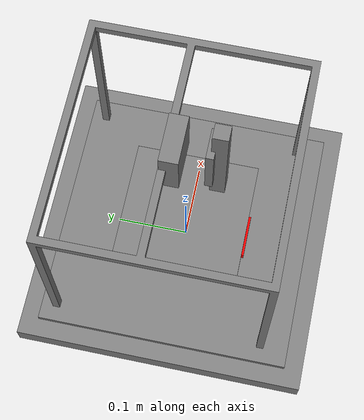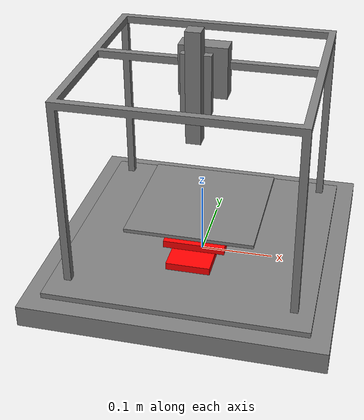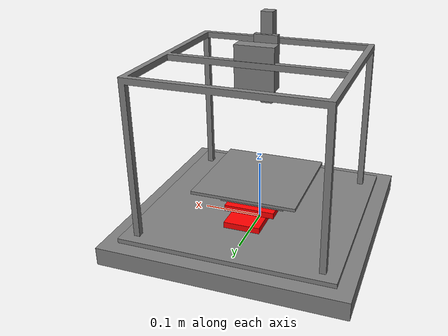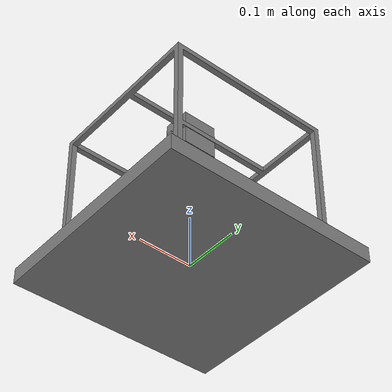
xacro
<?xml version="1.0"?>
<!-- Author:  Raul Cruz-Oliver, rcruzoliver@student.ethz.ch -->
<!-- Date, place:  November 2023, Butikkon, CH -->

<robot name="printer_v1" xmlns:xacro="http://ros.org/wiki/xacro">
  <!-- Define properties -->

  <xacro:property name="granite_size_x" value="0.4" /> <!-- checked -->
  <xacro:property name="granite_size_y" value="0.4" /> <!-- checked -->
  <xacro:property name="granite_size_z" value="0.03" /> <!-- checked -->

  <xacro:property name="base_size_x" value="0.35" /> <!-- checked -->
  <xacro:property name="base_size_y" value="0.35" /> <!-- checked -->
  <xacro:property name="base_size_z" value="0.015" /> <!-- checked -->

  <xacro:property name="frame_size_x" value="0.3" /> <!-- checked -->
  <xacro:property name="frame_size_y" value="-0.2" /> <!-- checked -->
  <xacro:property name="frame_size_z" value="0.25" /> <!-- checked -->
  <xacro:property name="frame_relative_postion" value="0.1925" /> <!-- checked -->
  <xacro:property name="frame_mesh_xyz" value="-0.155 -0.2090 0" /> <!-- approx -->
  <xacro:property name="frame_mesh_rpy" value="0 0 0" /> <!-- approx -->

  <xacro:property name="base_y_axis_size_x" value="0.06" /> <!-- approx -->
  <xacro:property name="base_y_axis_size_y" value="0.18" /> <!-- approx -->
  <xacro:property name="base_y_axis_size_z" value="0.01" /> <!-- approx -->

  <xacro:property name="carriage_y_axis_size_x" value="0.085" /> <!-- approx -->
  <xacro:property name="carriage_y_axis_size_y" value="0.11" /> <!-- approx -->
  <xacro:property name="carriage_y_axis_size_z" value="0.010" /> <!-- approx -->

  <xacro:property name="carriage_x_axis_size_x" value="0.11" />  <!-- approx -->
  <xacro:property name="carriage_x_axis_size_y" value="0.085" />  <!-- approx -->
  <xacro:property name="carriage_x_axis_size_z" value="0.02" />  <!-- approx -->

  <xacro:property name="base_x_axis_size_x" value="0.16" /> <!-- approx -->
  <xacro:property name="base_x_axis_size_y" value="0.06" /> <!-- approx -->
  <xacro:property name="base_x_axis_size_z" value="0.01" /> <!-- approx -->

  <xacro:property name="bed_size_x" value="0.175" /> <!-- approx -->
  <xacro:property name="bed_size_y" value="0.175" /> <!-- approx -->
  <xacro:property name="bed_size_z" value="0.005" /> <!-- approx -->

  <xacro:property name="carriage_z_axis_size_x" value="0.065" /> <!-- approx -->
  <xacro:property name="carriage_z_axis_size_y" value="0.025" /> <!-- approx -->
  <xacro:property name="carriage_z_axis_size_z" value="0.07" /> <!-- approx -->

  <xacro:property name="base_z_axis_size_x" value="0.04" /> <!-- approx -->
  <xacro:property name="base_z_axis_size_y" value="0.01" /> <!-- approx -->
  <xacro:property name="base_z_axis_size_z" value="0.08" /> <!-- approx -->

  <xacro:property name="printhead_size_x" value="0.02" /> <!-- approx -->
  <xacro:property name="printhead_size_y" value="0.02" /> <!-- approx -->
  <xacro:property name="printhead_size_z" value="0.15" /> <!-- approx -->

  <xacro:property name="printhead_mesh_xyz" value="0 0 0" /> <!-- approx -->
  <xacro:property name="printhead_mesh_rpy" value="0 0 0" /> <!-- approx -->

  <!-- Links-->

 <link name="granite">
    <pose>0 0 0 0 0 0</pose>

    <visual>
      <origin xyz="0 0 0" />
      <geometry>
        <box size="${granite_size_x} ${granite_size_y} ${granite_size_z}"/>
      </geometry>
      <material name="grey">
        <color rgba="0.5 0.5 0.5 1" />
      </material>
    </visual>
    <collision>
      <origin xyz="0 0 0" />
      <geometry>
        <box size="${granite_size_x} ${granite_size_y} ${granite_size_z}" />
      </geometry>
    </collision>
    <inertial>
      <mass value="0.050" />
      <origin xyz="0 0 0" />
      <inertia ixx="0.01" ixy="0.0" ixz="0.0" iyy="0.01" iyz="0.0" izz="0.01" />
    </inertial>
  </link>

  <link name="base">
    <visual>
      <geometry>
        <box size="${base_size_x} ${base_size_y} ${base_size_z}"/>
      </geometry>
      <material name="grey">
        <color rgba="0.5 0.5 0.5 1" />
      </material>
    </visual>
    <collision>
      <geometry>
        <box size="${base_size_x} ${base_size_y} ${base_size_z}" />
      </geometry>
    </collision>
    <inertial>
      <mass value="0.050" />
      <origin xyz="0 0 0" />
      <inertia ixx="0.01" ixy="0.0" ixz="0.0" iyy="0.01" iyz="0.0" izz="0.01" />
    </inertial>
  </link>

  <link name="frame">
    <visual>
      <origin xyz="${frame_mesh_xyz}" rpy="${frame_mesh_rpy}"/>
      <geometry>
        <mesh filename="package://kr_rviz_demo/meshes/frame.stl"/>
        <scale>0.1 0.1 0.1</scale>
      </geometry>
      <material name="grey">
        <color rgba="0.5 0.5 0.5 1" />
      </material>
    </visual>
    <collision>
      <origin xyz="${frame_mesh_xyz}" rpy="${frame_mesh_rpy}"/>
      <geometry>
        <mesh filename="package://kr_rviz_demo/meshes/frame.stl"/>
        <scale>0.1 0.1 0.1</scale>
      </geometry>
    </collision>
    <inertial>
      <mass value="2.0" />
      <origin xyz="0 0 0" />
      <inertia ixx="0.01" ixy="0.0" ixz="0.0" iyy="0.01" iyz="0.0" izz="0.01" />
    </inertial>
  </link>

  <link name="base_y_axis">
    <visual>
      <origin xyz="0 0 ${base_y_axis_size_z/2}" />
      <geometry>
        <box size="${base_y_axis_size_x} ${base_y_axis_size_y} ${base_y_axis_size_z}"/>
      </geometry>
      <material name="grey">
        <color rgba="1 0 0 1" />
      </material>
    </visual>
    <collision>
      <origin xyz="0 0 ${base_y_axis_size_z/2}" />
      <geometry>
        <box size="${base_y_axis_size_x} ${base_y_axis_size_y} ${base_y_axis_size_z}" />
      </geometry>
    </collision>
    <inertial>
      <mass value="2.0" />
      <origin xyz="0 0 0" />
      <inertia ixx="0.01" ixy="0.0" ixz="0.0" iyy="0.01" iyz="0.0" izz="0.01" />
    </inertial>
  </link>

  <link name="carriage_y_axis">
    <visual>
      <origin xyz="0 0 ${carriage_y_axis_size_z/2}" />
      <geometry>
        <box size="${carriage_y_axis_size_x} ${carriage_y_axis_size_y} ${carriage_y_axis_size_z}"/>
      </geometry>
      <material name="grey">
        <color rgba="1 0 0 1" />
      </material>
    </visual>
    <collision>
      <origin xyz="0 0 ${carriage_y_axis_size_z/2}" />
      <geometry>
        <box size="${carriage_y_axis_size_x} ${carriage_y_axis_size_y} ${carriage_y_axis_size_z}" />
      </geometry>
    </collision>
    <inertial>
      <mass value="2.0" />
      <origin xyz="0 0 0" />
      <inertia ixx="0.01" ixy="0.0" ixz="0.0" iyy="0.01" iyz="0.0" izz="0.01" />
    </inertial>
  </link>

  <link name="carriage_x_axis">
    <visual>
      <origin xyz="0 0 ${carriage_x_axis_size_z/2}" />
      <geometry>
        <box size="${carriage_x_axis_size_x} ${carriage_x_axis_size_y} ${carriage_x_axis_size_z}"/>
      </geometry>
      <material name="grey">
        <color rgba="0.5 0.5 0.5 1" />
      </material>
    </visual>
    <collision>
      <origin xyz="0 0 ${carriage_x_axis_size_z/2}" />
      <geometry>
        <box size="${carriage_x_axis_size_x} ${carriage_x_axis_size_y} ${carriage_x_axis_size_z}" />
      </geometry>
    </collision>
    <inertial>
      <mass value="2.0" />
      <origin xyz="0 0 0" />
      <inertia ixx="0.01" ixy="0.0" ixz="0.0" iyy="0.01" iyz="0.0" izz="0.01" />
    </inertial>
  </link>

  <link name="base_x_axis">
    <visual>
      <origin xyz="0 0 ${base_x_axis_size_z/2}" />
      <geometry>
        <box size="${base_x_axis_size_x} ${base_x_axis_size_y} ${base_x_axis_size_z}"/>
      </geometry>
      <material name="grey">
        <color rgba="0.5 0.5 0.5 1" />
      </material>
    </visual>
    <collision>
      <origin xyz="0 0 ${base_x_axis_size_z/2}" />
      <geometry>
        <box size="${base_x_axis_size_x} ${base_x_axis_size_y} ${base_x_axis_size_z}" />
      </geometry>
    </collision>
    <inertial>
      <mass value="2.0" />
      <origin xyz="0 0 0" />
      <inertia ixx="0.01" ixy="0.0" ixz="0.0" iyy="0.01" iyz="0.0" izz="0.01" />
    </inertial>
  </link>

  <link name="bed">
    <visual>
      <origin xyz="0 0 ${bed_size_z/2}" />
      <geometry>
        <box size="${bed_size_x} ${bed_size_y} ${bed_size_z}"/>
      </geometry>
      <material name="blue">
        <color rgba="0.5 0.5 0.5 1" />
      </material>
    </visual>
    <collision>
      <origin xyz="0 0 ${bed_size_z/2}" />
      <geometry>
        <box size="${bed_size_x} ${bed_size_y} ${bed_size_z}" />
      </geometry>
    </collision>
    <inertial>
      <mass value="2.0" />
      <origin xyz="0 0 0" />
      <inertia ixx="0.01" ixy="0.0" ixz="0.0" iyy="0.01" iyz="0.0" izz="0.01" />
    </inertial>
  </link>

  <link name="carriage_z_axis">
    <visual>
      <origin xyz="0 ${-carriage_z_axis_size_y/2} 0" />
      <geometry>
        <box size="${carriage_z_axis_size_x} ${carriage_z_axis_size_y} ${carriage_z_axis_size_z}"/>
      </geometry>
      <material name="grey">
        <color rgba="0.5 0.5 0.5 1" />
      </material>
    </visual>
    <collision>
      <origin xyz="0 ${-carriage_z_axis_size_y/2} 0" />
      <geometry>
        <box size="${carriage_z_axis_size_x} ${carriage_z_axis_size_y} ${carriage_z_axis_size_z}" />
      </geometry>
    </collision>
    <inertial>
      <mass value="2.0" />
      <origin xyz="0 0 0" />
      <inertia ixx="0.01" ixy="0.0" ixz="0.0" iyy="0.01" iyz="0.0" izz="0.01" />
    </inertial>
  </link>

  <link name="base_z_axis">
    <visual>
      <origin xyz="0 ${-base_z_axis_size_y} 0" />
      <geometry>
        <box size="${base_z_axis_size_x} ${-base_z_axis_size_y} ${base_z_axis_size_z}"/>
      </geometry>
      <material name="grey">
        <color rgba="0.5 0.5 0.5 1" />
      </material>
    </visual>
    <collision>
      <origin xyz="0 ${-base_z_axis_size_y} 0" />
      <geometry>
        <box size="${base_z_axis_size_x} ${-base_z_axis_size_y} ${base_z_axis_size_z}" />
      </geometry>
    </collision>
    <inertial>
      <mass value="2.0" />
      <origin xyz="0 0 0" />
      <inertia ixx="0.01" ixy="0.0" ixz="0.0" iyy="0.01" iyz="0.0" izz="0.01" />
    </inertial>
  </link>

  <link name="printhead">
    <visual>
      <origin xyz="${printhead_mesh_xyz}" rpy="${printhead_mesh_rpy}" />
      <geometry>
        <box size="${printhead_size_x} ${printhead_size_y} ${printhead_size_z}"/>
      </geometry>
      <material name="blue">
        <color rgba="0.5 0.5 0.5 1" />
      </material>

    </visual>
    <collision>
      <origin xyz="0 ${-printhead_size_y/2} 0" />
      <geometry>
        <box size="${printhead_size_x} ${printhead_size_y} ${printhead_size_z}" />
      </geometry>
    </collision>
    <inertial>
      <mass value="2.0" />
      <origin xyz="0 0 0" />
      <inertia ixx="0.01" ixy="0.0" ixz="0.0" iyy="0.01" iyz="0.0" izz="0.01" />
    </inertial>
  </link>

  <!-- Joints -->

  <joint name="granite_to_base" type="fixed">
    <origin xyz="0.0 0.0 ${granite_size_z/2}" rpy="0 0 0" />
    <parent link="granite" />
    <child link="base" />
  </joint>

  <joint name="base_to_frame" type="fixed">
    <origin xyz="0.0 ${0.1925*base_size_y} ${base_size_z/2}" rpy="0 0 0" />  <!-- approx -->
    <parent link="base" />
    <child link="frame" />
  </joint>

  <joint name="base_to_base_y_axis" type="fixed">
    <origin xyz="0.0 ${0*base_size_y} ${base_size_z/2}" rpy="0 0 0" />
    <parent link="base" />
    <child link="base_y_axis" />
  </joint>

  <joint name="base_y_axis_to_carriage_y_axis" type="prismatic">
    <origin xyz="0.0 0.0 ${base_y_axis_size_z}" rpy="0 0 0" />
    <parent link="base_y_axis" />
    <child link="carriage_y_axis" />
    <axis xyz="0 1 0"/>
    <limit lower="-0.01" upper="0.01" effort="10" velocity="1"/>
  </joint>

  <joint name="carriage_y_axis_to_carriage_x_axis" type="fixed">
    <origin xyz="0.0 0.0 ${carriage_y_axis_size_z}" rpy="0 0 0" />
    <parent link="carriage_y_axis" />
    <child link="carriage_x_axis" />
  </joint>

  <joint name="carriage_x_axis_to_base_x_axis" type="prismatic">
    <origin xyz="0.0 0.0 ${carriage_x_axis_size_z}" rpy="0 0 0" />
    <parent link="carriage_x_axis" />
    <child link="base_x_axis" />
    <axis xyz="1 0 0"/>
    <limit lower="-0.01" upper="0.01" effort="10" velocity="1"/>
  </joint>

  <joint name="base_x_axis_to_bed" type="fixed">
    <origin xyz="0.0 0.0 ${base_x_axis_size_z}" rpy="0 0 0" />
    <parent link="base_x_axis" />
    <child link="bed" />
  </joint>

  <joint name="frame_to_carriage_z_axis" type="fixed">
    <origin xyz="0.0 ${0.20*frame_size_y} ${1*frame_size_z}" rpy="0 0 0" />
    <parent link="frame" />
    <child link="carriage_z_axis" />
  </joint>

  <joint name="carriage_z_axis_to_base_z_axis" type="prismatic">
    <origin xyz="0.0 ${-2*carriage_z_axis_size_y} 0" rpy="0 0 0" />
    <parent link="carriage_z_axis" />
    <child link="base_z_axis" />
    <axis xyz="0 0 1"/>
    <limit lower="-0.01" upper="0.01" effort="100" velocity="0.1"/>
  </joint>

  <joint name="base_z_axis_printhead" type="fixed">
    <origin xyz="0.0 ${-2*base_z_axis_size_y} 0" rpy="0 0 0" />
    <parent link="base_z_axis" />
    <child link="printhead" />
  </joint>

</robot>
